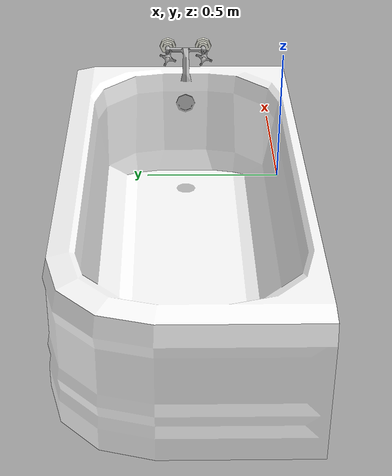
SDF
<?xml version="1.0" ?>
<sdf version="1.4">
  <model name="Tub">
    <link name="Tub_link">
      <inertial>
        <pose>0 0 0 0 0 0</pose>
        <mass>0.08</mass>
      </inertial>

      <visual name="Tub_visual">
        <pose>0 0 0 0 0 0</pose>
        <geometry>
          <mesh>
            <uri>model://Tub/meshes/Tub.dae</uri>
          </mesh>
        </geometry>
      </visual>

      <collision name="Tub_collision">
        <pose>0 0 0 0 0 0</pose>
        <geometry>
          <mesh>
            <uri>model://Tub/meshes/Tub.dae</uri>
          </mesh>
        </geometry>
        <surface>
          <friction>
            <ode>
              <mu>0.8</mu>
              <mu2>0.8</mu2>
              <fdir1>0.0 0.0 0.0</fdir1>
              <slip1>0.01</slip1>
              <slip2>0.01</slip2>
            </ode>
          </friction>
        </surface>
      </collision>

    </link>
  </model>
</sdf>
